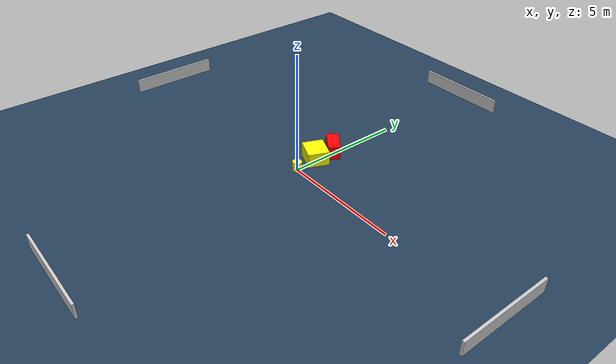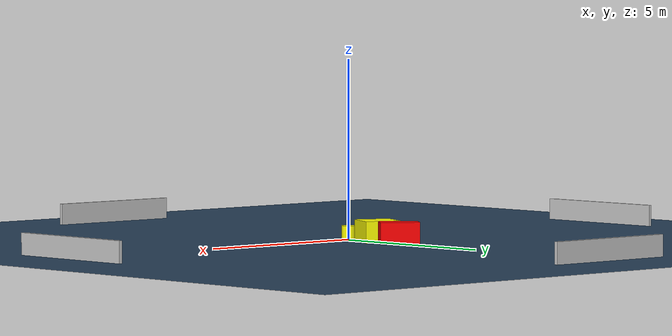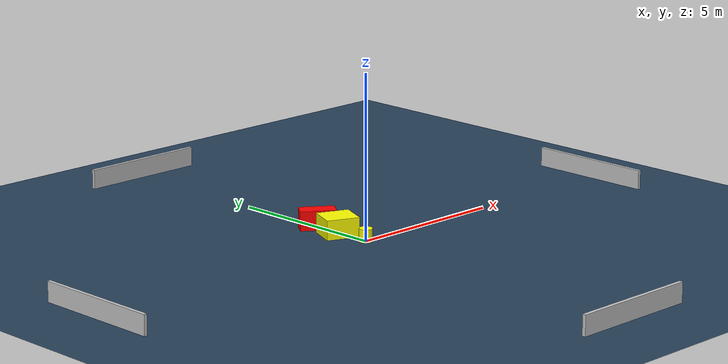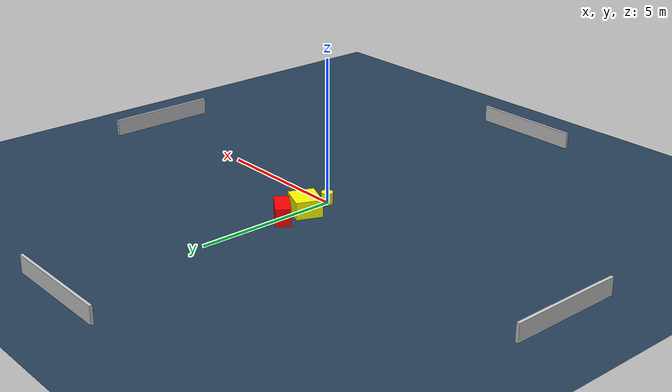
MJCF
<?xml version="1.0" ?>
<mujoco model="generated_environment">
  <option timestep="0.01" integrator="RK4" cone="elliptic"/>
  <default>
    <geom density="1"/>
  </default>
  <asset>
    <texture builtin="gradient" height="3072" name="skybox" rgb1="0.3 0.5 0.7" rgb2="0 0 0" type="skybox" width="512"/>
    <texture builtin="checker" height="300" name="groundplane" rgb1="0.2 0.3 0.4" rgb2="0.1 0.2 0.3" type="2d" width="300"/>
    <material name="groundplane" reflectance="0.2" texrepeat="5 5" texture="groundplane"/>
  </asset>
  <worldbody>
    <light dir="0 0 -1" directional="true" pos="0 0 1.5"/>
    <geom condim="3" friction="0.5 0.005 0.001" material="groundplane" name="floor" pos="0 0 0" size="0 0 0.05" type="plane"/>
    <body name="walls">
      <geom name="wall_1" condim="4" pos="-10.0 0.0 0.3" rgba="0.800000011920929 0.800000011920929 0.800000011920929 1.0" size="0.05 2.0 0.3" type="box"/>
      <geom name="wall_2" condim="4" pos="10.0 0.0 0.3" rgba="0.800000011920929 0.800000011920929 0.800000011920929 1.0" size="0.05 2.0 0.3" type="box"/>
      <geom name="wall_3" condim="4" pos="0.0 -10.0 0.3" rgba="0.800000011920929 0.800000011920929 0.800000011920929 1.0" size="2.0 0.05 0.3" type="box"/>
      <geom name="wall_4" condim="4" pos="0.0 10.0 0.3" rgba="0.800000011920929 0.800000011920929 0.800000011920929 1.0" size="2.0 0.05 0.3" type="box"/>
    </body>
    <body name="robot">
      <joint name="joint_x" type="slide" pos="0 0 0" axis="1 0 0"/>
      <joint name="joint_y" type="slide" pos="0 0 0" axis="0 1 0"/>
      <geom name="robot" type="cylinder" pos="0.0 0.0 0.2" size="0.2 0.2 0.0" mass="5.0" friction="1.0 0.005 0.0001" condim="4" rgba="1.0 1.0 0.0 1.0"/>
    </body>
    <body name="obstacle_1_movable">
      <geom name="obstacle_1_movable" condim="4" pos="-0.11364450777356055 1.041859641866436 0.3" euler="0 0 67.05037920345497" friction="0.0 0.005 0.001" rgba="1.0 1.0 0.0 1.0" size="0.44940157790409035 0.5055308755502048 0.3" type="box" mass="0.1"/>
      <joint type="free"/>
    </body>
    <body name="obstacle_2_static">
      <geom name="obstacle_2_static" condim="4" pos="-0.06793147736668312 1.9521179125548929 0.3" euler="0 0 54.49909028053641" friction="0.0 0.005 0.001" rgba="1.0 0.0 0.0 1.0" size="0.2560043297646769 0.5427681200666707 0.3" type="box"/>
    </body>
  </worldbody>
  <actuator>
    <motor name="actuator_x" joint="joint_x" gear="1" ctrlrange="-1 1"/>
    <motor name="actuator_y" joint="joint_y" gear="1" ctrlrange="-1 1"/>
  </actuator>
</mujoco>
